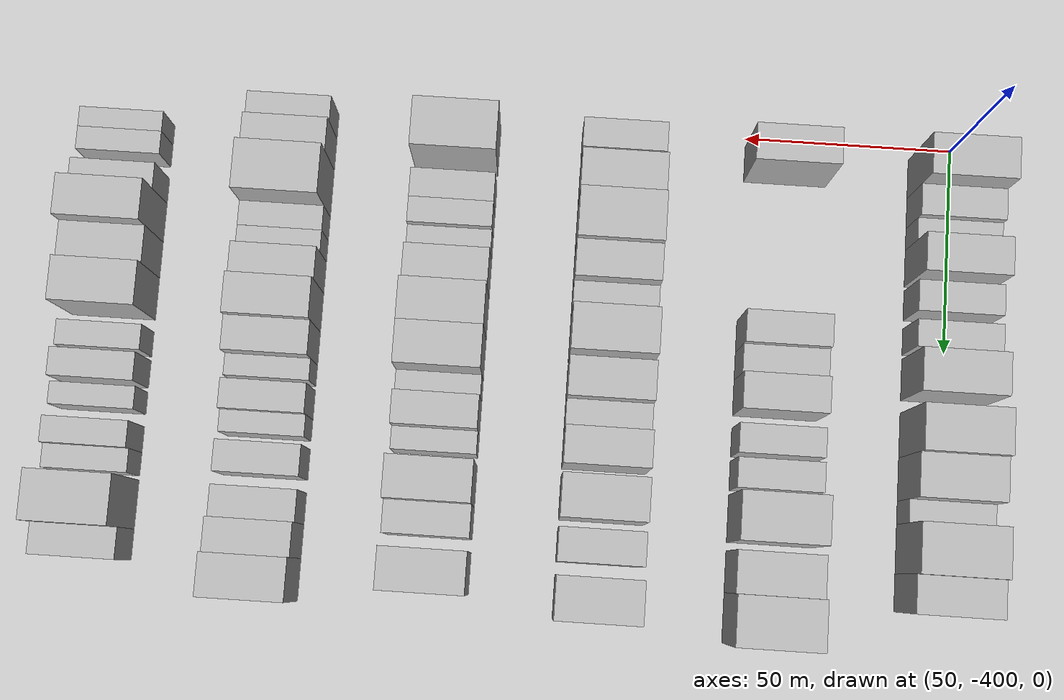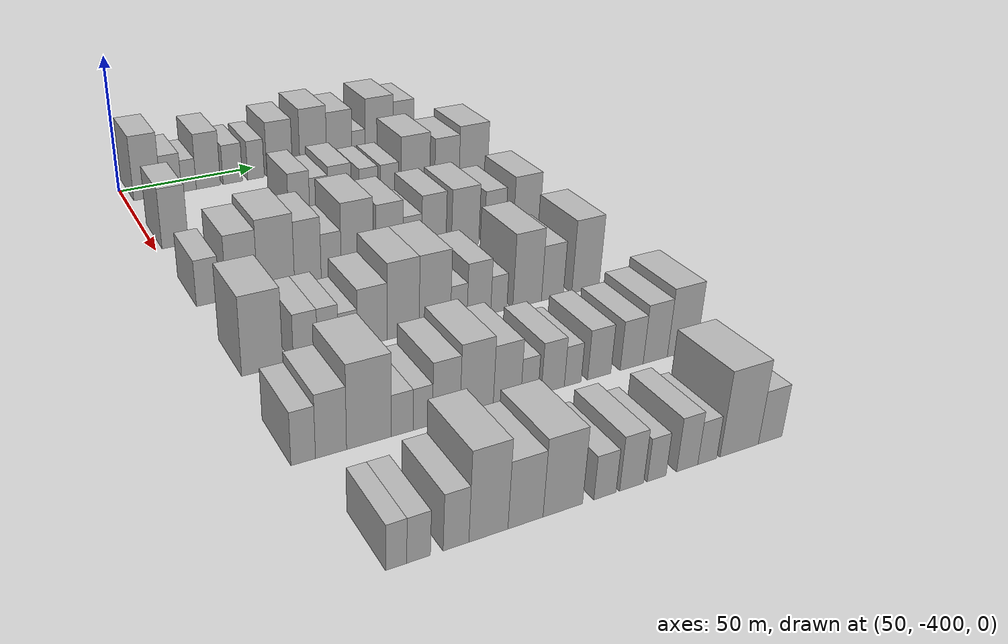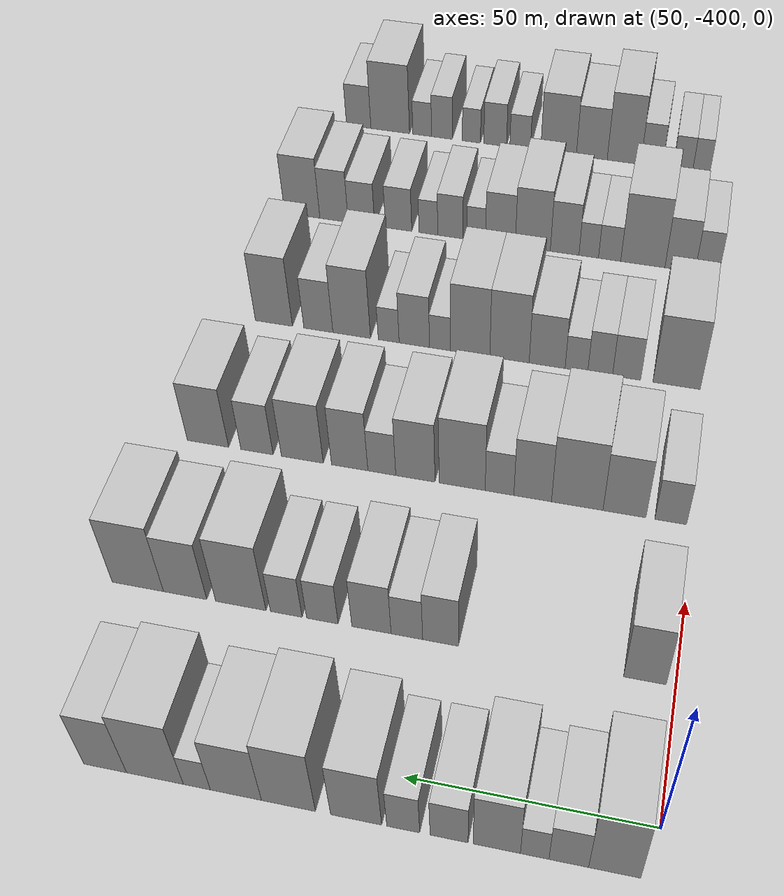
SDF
<sdf version="1.6">
 <world name="default">
  <model name="building_26">
   <static>1</static>
   <pose>50.0000 -392.3706 0 0.000000 0.000000 0.000000</pose>
   <link name="link">
    <pose>0 0 12.00 0 0 0</pose>
    <collision name="collision"><geometry><box><size>20.0000 9.7205 24.0000</size></box></geometry></collision>
    <visual name="visual">
     <cast_shadows>0</cast_shadows>
     <geometry><box><size>20.0000 9.7205 24.0000</size></box></geometry>
     <material>
      <script>
       <uri>model://HANNAS_wall/materials/scripts</uri>
       <uri>model://HANNAS_wall/materials/textures</uri>
       <name>vrc/HANNAS_wall</name>
      </script>
     </material>
    </visual>
   </link>
  </model>
  <model name="building_27">
   <static>1</static>
   <pose>50.0000 -383.7733 0 0.000000 0.000000 0.000000</pose>
   <link name="link">
    <pose>0 0 7.50 0 0 0</pose>
    <collision name="collision"><geometry><box><size>20.0000 7.4741 15.0000</size></box></geometry></collision>
    <visual name="visual">
     <cast_shadows>0</cast_shadows>
     <geometry><box><size>20.0000 7.4741 15.0000</size></box></geometry>
     <material>
      <script>
       <uri>model://HANNAS_wall/materials/scripts</uri>
       <uri>model://HANNAS_wall/materials/textures</uri>
       <name>vrc/HANNAS_wall</name>
      </script>
     </material>
    </visual>
   </link>
  </model>
  <model name="building_28">
   <static>1</static>
   <pose>50.0000 -377.3283 0 0.000000 0.000000 0.000000</pose>
   <link name="link">
    <pose>0 0 6.00 0 0 0</pose>
    <collision name="collision"><geometry><box><size>20.0000 5.4159 12.0000</size></box></geometry></collision>
    <visual name="visual">
     <cast_shadows>0</cast_shadows>
     <geometry><box><size>20.0000 5.4159 12.0000</size></box></geometry>
     <material>
      <script>
       <uri>model://HANNAS_wall/materials/scripts</uri>
       <uri>model://HANNAS_wall/materials/textures</uri>
       <name>vrc/HANNAS_wall</name>
      </script>
     </material>
    </visual>
   </link>
  </model>
  <model name="building_29">
   <static>1</static>
   <pose>50.0000 -370.1211 0 0.000000 0.000000 0.000000</pose>
   <link name="link">
    <pose>0 0 10.50 0 0 0</pose>
    <collision name="collision"><geometry><box><size>20.0000 8.9987 21.0000</size></box></geometry></collision>
    <visual name="visual">
     <cast_shadows>0</cast_shadows>
     <geometry><box><size>20.0000 8.9987 21.0000</size></box></geometry>
     <material>
      <script>
       <uri>model://HANNAS_wall/materials/scripts</uri>
       <uri>model://HANNAS_wall/materials/textures</uri>
       <name>vrc/HANNAS_wall</name>
      </script>
     </material>
    </visual>
   </link>
  </model>
  <model name="building_30">
   <static>1</static>
   <pose>50.0000 -360.9639 0 0.000000 0.000000 0.000000</pose>
   <link name="link">
    <pose>0 0 7.50 0 0 0</pose>
    <collision name="collision"><geometry><box><size>20.0000 7.3156 15.0000</size></box></geometry></collision>
    <visual name="visual">
     <cast_shadows>0</cast_shadows>
     <geometry><box><size>20.0000 7.3156 15.0000</size></box></geometry>
     <material>
      <script>
       <uri>model://HANNAS_wall/materials/scripts</uri>
       <uri>model://HANNAS_wall/materials/textures</uri>
       <name>vrc/HANNAS_wall</name>
      </script>
     </material>
    </visual>
   </link>
  </model>
  <model name="building_31">
   <static>1</static>
   <pose>50.0000 -352.1013 0 0.000000 0.000000 0.000000</pose>
   <link name="link">
    <pose>0 0 7.50 0 0 0</pose>
    <collision name="collision"><geometry><box><size>20.0000 6.4097 15.0000</size></box></geometry></collision>
    <visual name="visual">
     <cast_shadows>0</cast_shadows>
     <geometry><box><size>20.0000 6.4097 15.0000</size></box></geometry>
     <material>
      <script>
       <uri>model://HANNAS_wall/materials/scripts</uri>
       <uri>model://HANNAS_wall/materials/textures</uri>
       <name>vrc/HANNAS_wall</name>
      </script>
     </material>
    </visual>
   </link>
  </model>
  <model name="building_32">
   <static>1</static>
   <pose>50.0000 -342.8801 0 0.000000 0.000000 0.000000</pose>
   <link name="link">
    <pose>0 0 10.50 0 0 0</pose>
    <collision name="collision"><geometry><box><size>20.0000 10.0327 21.0000</size></box></geometry></collision>
    <visual name="visual">
     <cast_shadows>0</cast_shadows>
     <geometry><box><size>20.0000 10.0327 21.0000</size></box></geometry>
     <material>
      <script>
       <uri>model://HANNAS_wall/materials/scripts</uri>
       <uri>model://HANNAS_wall/materials/textures</uri>
       <name>vrc/HANNAS_wall</name>
      </script>
     </material>
    </visual>
   </link>
  </model>
  <model name="building_33">
   <static>1</static>
   <pose>50.0000 -329.4867 0 0.000000 0.000000 0.000000</pose>
   <link name="link">
    <pose>0 0 12.00 0 0 0</pose>
    <collision name="collision"><geometry><box><size>20.0000 10.7541 24.0000</size></box></geometry></collision>
    <visual name="visual">
     <cast_shadows>0</cast_shadows>
     <geometry><box><size>20.0000 10.7541 24.0000</size></box></geometry>
     <material>
      <script>
       <uri>model://HANNAS_wall/materials/scripts</uri>
       <uri>model://HANNAS_wall/materials/textures</uri>
       <name>vrc/HANNAS_wall</name>
      </script>
     </material>
    </visual>
   </link>
  </model>
  <model name="building_34">
   <static>1</static>
   <pose>50.0000 -318.9630 0 0.000000 0.000000 0.000000</pose>
   <link name="link">
    <pose>0 0 10.50 0 0 0</pose>
    <collision name="collision"><geometry><box><size>20.0000 10.2934 21.0000</size></box></geometry></collision>
    <visual name="visual">
     <cast_shadows>0</cast_shadows>
     <geometry><box><size>20.0000 10.2934 21.0000</size></box></geometry>
     <material>
      <script>
       <uri>model://HANNAS_wall/materials/scripts</uri>
       <uri>model://HANNAS_wall/materials/textures</uri>
       <name>vrc/HANNAS_wall</name>
      </script>
     </material>
    </visual>
   </link>
  </model>
  <model name="building_35">
   <static>1</static>
   <pose>50.0000 -311.0700 0 0.000000 0.000000 0.000000</pose>
   <link name="link">
    <pose>0 0 6.00 0 0 0</pose>
    <collision name="collision"><geometry><box><size>20.0000 5.4926 12.0000</size></box></geometry></collision>
    <visual name="visual">
     <cast_shadows>0</cast_shadows>
     <geometry><box><size>20.0000 5.4926 12.0000</size></box></geometry>
     <material>
      <script>
       <uri>model://HANNAS_wall/materials/scripts</uri>
       <uri>model://HANNAS_wall/materials/textures</uri>
       <name>vrc/HANNAS_wall</name>
      </script>
     </material>
    </visual>
   </link>
  </model>
  <model name="building_36">
   <static>1</static>
   <pose>50.0000 -302.5009 0 0.000000 0.000000 0.000000</pose>
   <link name="link">
    <pose>0 0 12.00 0 0 0</pose>
    <collision name="collision"><geometry><box><size>20.0000 11.6454 24.0000</size></box></geometry></collision>
    <visual name="visual">
     <cast_shadows>0</cast_shadows>
     <geometry><box><size>20.0000 11.6454 24.0000</size></box></geometry>
     <material>
      <script>
       <uri>model://HANNAS_wall/materials/scripts</uri>
       <uri>model://HANNAS_wall/materials/textures</uri>
       <name>vrc/HANNAS_wall</name>
      </script>
     </material>
    </visual>
   </link>
  </model>
  <model name="building_37">
   <static>1</static>
   <pose>50.0000 -292.2580 0 0.000000 0.000000 0.000000</pose>
   <link name="link">
    <pose>0 0 10.50 0 0 0</pose>
    <collision name="collision"><geometry><box><size>20.0000 8.8404 21.0000</size></box></geometry></collision>
    <visual name="visual">
     <cast_shadows>0</cast_shadows>
     <geometry><box><size>20.0000 8.8404 21.0000</size></box></geometry>
     <material>
      <script>
       <uri>model://HANNAS_wall/materials/scripts</uri>
       <uri>model://HANNAS_wall/materials/textures</uri>
       <name>vrc/HANNAS_wall</name>
      </script>
     </material>
    </visual>
   </link>
  </model>
  <model name="building_163">
   <static>1</static>
   <pose>90.0000 -393.5186 0 0.000000 0.000000 0.000000</pose>
   <link name="link">
    <pose>0 0 10.50 0 0 0</pose>
    <collision name="collision"><geometry><box><size>20.0000 8.7437 21.0000</size></box></geometry></collision>
    <visual name="visual">
     <cast_shadows>0</cast_shadows>
     <geometry><box><size>20.0000 8.7437 21.0000</size></box></geometry>
     <material>
      <script>
       <uri>model://HANNAS_wall/materials/scripts</uri>
       <uri>model://HANNAS_wall/materials/textures</uri>
       <name>vrc/HANNAS_wall</name>
      </script>
     </material>
    </visual>
   </link>
  </model>
  <model name="building_164">
   <static>1</static>
   <pose>90.0000 -350.7017 0 0.000000 0.000000 0.000000</pose>
   <link name="link">
    <pose>0 0 9.00 0 0 0</pose>
    <collision name="collision"><geometry><box><size>20.0000 7.6300 18.0000</size></box></geometry></collision>
    <visual name="visual">
     <cast_shadows>0</cast_shadows>
     <geometry><box><size>20.0000 7.6300 18.0000</size></box></geometry>
     <material>
      <script>
       <uri>model://HANNAS_wall/materials/scripts</uri>
       <uri>model://HANNAS_wall/materials/textures</uri>
       <name>vrc/HANNAS_wall</name>
      </script>
     </material>
    </visual>
   </link>
  </model>
  <model name="building_165">
   <static>1</static>
   <pose>90.0000 -343.4855 0 0.000000 0.000000 0.000000</pose>
   <link name="link">
    <pose>0 0 7.50 0 0 0</pose>
    <collision name="collision"><geometry><box><size>20.0000 6.8024 15.0000</size></box></geometry></collision>
    <visual name="visual">
     <cast_shadows>0</cast_shadows>
     <geometry><box><size>20.0000 6.8024 15.0000</size></box></geometry>
     <material>
      <script>
       <uri>model://HANNAS_wall/materials/scripts</uri>
       <uri>model://HANNAS_wall/materials/textures</uri>
       <name>vrc/HANNAS_wall</name>
      </script>
     </material>
    </visual>
   </link>
  </model>
  <model name="building_166">
   <static>1</static>
   <pose>90.0000 -335.8275 0 0.000000 0.000000 0.000000</pose>
   <link name="link">
    <pose>0 0 9.00 0 0 0</pose>
    <collision name="collision"><geometry><box><size>20.0000 8.5136 18.0000</size></box></geometry></collision>
    <visual name="visual">
     <cast_shadows>0</cast_shadows>
     <geometry><box><size>20.0000 8.5136 18.0000</size></box></geometry>
     <material>
      <script>
       <uri>model://HANNAS_wall/materials/scripts</uri>
       <uri>model://HANNAS_wall/materials/textures</uri>
       <name>vrc/HANNAS_wall</name>
      </script>
     </material>
    </visual>
   </link>
  </model>
  <model name="building_167">
   <static>1</static>
   <pose>90.0000 -325.1230 0 0.000000 0.000000 0.000000</pose>
   <link name="link">
    <pose>0 0 7.50 0 0 0</pose>
    <collision name="collision"><geometry><box><size>20.0000 6.8953 15.0000</size></box></geometry></collision>
    <visual name="visual">
     <cast_shadows>0</cast_shadows>
     <geometry><box><size>20.0000 6.8953 15.0000</size></box></geometry>
     <material>
      <script>
       <uri>model://HANNAS_wall/materials/scripts</uri>
       <uri>model://HANNAS_wall/materials/textures</uri>
       <name>vrc/HANNAS_wall</name>
      </script>
     </material>
    </visual>
   </link>
  </model>
  <model name="building_168">
   <static>1</static>
   <pose>90.0000 -317.1771 0 0.000000 0.000000 0.000000</pose>
   <link name="link">
    <pose>0 0 7.50 0 0 0</pose>
    <collision name="collision"><geometry><box><size>20.0000 6.9966 15.0000</size></box></geometry></collision>
    <visual name="visual">
     <cast_shadows>0</cast_shadows>
     <geometry><box><size>20.0000 6.9966 15.0000</size></box></geometry>
     <material>
      <script>
       <uri>model://HANNAS_wall/materials/scripts</uri>
       <uri>model://HANNAS_wall/materials/textures</uri>
       <name>vrc/HANNAS_wall</name>
      </script>
     </material>
    </visual>
   </link>
  </model>
  <model name="building_169">
   <static>1</static>
   <pose>90.0000 -307.0730 0 0.000000 0.000000 0.000000</pose>
   <link name="link">
    <pose>0 0 12.00 0 0 0</pose>
    <collision name="collision"><geometry><box><size>20.0000 11.2116 24.0000</size></box></geometry></collision>
    <visual name="visual">
     <cast_shadows>0</cast_shadows>
     <geometry><box><size>20.0000 11.2116 24.0000</size></box></geometry>
     <material>
      <script>
       <uri>model://HANNAS_wall/materials/scripts</uri>
       <uri>model://HANNAS_wall/materials/textures</uri>
       <name>vrc/HANNAS_wall</name>
      </script>
     </material>
    </visual>
   </link>
  </model>
  <model name="building_170">
   <static>1</static>
   <pose>90.0000 -294.5897 0 0.000000 0.000000 0.000000</pose>
   <link name="link">
    <pose>0 0 10.50 0 0 0</pose>
    <collision name="collision"><geometry><box><size>20.0000 9.7550 21.0000</size></box></geometry></collision>
    <visual name="visual">
     <cast_shadows>0</cast_shadows>
     <geometry><box><size>20.0000 9.7550 21.0000</size></box></geometry>
     <material>
      <script>
       <uri>model://HANNAS_wall/materials/scripts</uri>
       <uri>model://HANNAS_wall/materials/textures</uri>
       <name>vrc/HANNAS_wall</name>
      </script>
     </material>
    </visual>
   </link>
  </model>
  <model name="building_171">
   <static>1</static>
   <pose>90.0000 -283.8749 0 0.000000 0.000000 0.000000</pose>
   <link name="link">
    <pose>0 0 12.00 0 0 0</pose>
    <collision name="collision"><geometry><box><size>20.0000 11.6746 24.0000</size></box></geometry></collision>
    <visual name="visual">
     <cast_shadows>0</cast_shadows>
     <geometry><box><size>20.0000 11.6746 24.0000</size></box></geometry>
     <material>
      <script>
       <uri>model://HANNAS_wall/materials/scripts</uri>
       <uri>model://HANNAS_wall/materials/textures</uri>
       <name>vrc/HANNAS_wall</name>
      </script>
     </material>
    </visual>
   </link>
  </model>
  <model name="building_289">
   <static>1</static>
   <pose>130.0000 -394.8407 0 0.000000 0.000000 0.000000</pose>
   <link name="link">
    <pose>0 0 7.50 0 0 0</pose>
    <collision name="collision"><geometry><box><size>20.0000 7.1140 15.0000</size></box></geometry></collision>
    <visual name="visual">
     <cast_shadows>0</cast_shadows>
     <geometry><box><size>20.0000 7.1140 15.0000</size></box></geometry>
     <material>
      <script>
       <uri>model://HANNAS_wall/materials/scripts</uri>
       <uri>model://HANNAS_wall/materials/textures</uri>
       <name>vrc/HANNAS_wall</name>
      </script>
     </material>
    </visual>
   </link>
  </model>
  <model name="building_290">
   <static>1</static>
   <pose>130.0000 -384.4261 0 0.000000 0.000000 0.000000</pose>
   <link name="link">
    <pose>0 0 10.50 0 0 0</pose>
    <collision name="collision"><geometry><box><size>20.0000 9.7152 21.0000</size></box></geometry></collision>
    <visual name="visual">
     <cast_shadows>0</cast_shadows>
     <geometry><box><size>20.0000 9.7152 21.0000</size></box></geometry>
     <material>
      <script>
       <uri>model://HANNAS_wall/materials/scripts</uri>
       <uri>model://HANNAS_wall/materials/textures</uri>
       <name>vrc/HANNAS_wall</name>
      </script>
     </material>
    </visual>
   </link>
  </model>
  <model name="building_291">
   <static>1</static>
   <pose>130.0000 -373.6870 0 0.000000 0.000000 0.000000</pose>
   <link name="link">
    <pose>0 0 12.00 0 0 0</pose>
    <collision name="collision"><geometry><box><size>20.0000 11.7629 24.0000</size></box></geometry></collision>
    <visual name="visual">
     <cast_shadows>0</cast_shadows>
     <geometry><box><size>20.0000 11.7629 24.0000</size></box></geometry>
     <material>
      <script>
       <uri>model://HANNAS_wall/materials/scripts</uri>
       <uri>model://HANNAS_wall/materials/textures</uri>
       <name>vrc/HANNAS_wall</name>
      </script>
     </material>
    </visual>
   </link>
  </model>
  <model name="building_292">
   <static>1</static>
   <pose>130.0000 -363.4746 0 0.000000 0.000000 0.000000</pose>
   <link name="link">
    <pose>0 0 10.50 0 0 0</pose>
    <collision name="collision"><geometry><box><size>20.0000 8.6620 21.0000</size></box></geometry></collision>
    <visual name="visual">
     <cast_shadows>0</cast_shadows>
     <geometry><box><size>20.0000 8.6620 21.0000</size></box></geometry>
     <material>
      <script>
       <uri>model://HANNAS_wall/materials/scripts</uri>
       <uri>model://HANNAS_wall/materials/textures</uri>
       <name>vrc/HANNAS_wall</name>
      </script>
     </material>
    </visual>
   </link>
  </model>
  <model name="building_293">
   <static>1</static>
   <pose>130.0000 -355.8219 0 0.000000 0.000000 0.000000</pose>
   <link name="link">
    <pose>0 0 7.50 0 0 0</pose>
    <collision name="collision"><geometry><box><size>20.0000 6.6436 15.0000</size></box></geometry></collision>
    <visual name="visual">
     <cast_shadows>0</cast_shadows>
     <geometry><box><size>20.0000 6.6436 15.0000</size></box></geometry>
     <material>
      <script>
       <uri>model://HANNAS_wall/materials/scripts</uri>
       <uri>model://HANNAS_wall/materials/textures</uri>
       <name>vrc/HANNAS_wall</name>
      </script>
     </material>
    </visual>
   </link>
  </model>
  <model name="building_294">
   <static>1</static>
   <pose>130.0000 -347.1349 0 0.000000 0.000000 0.000000</pose>
   <link name="link">
    <pose>0 0 12.00 0 0 0</pose>
    <collision name="collision"><geometry><box><size>20.0000 10.7303 24.0000</size></box></geometry></collision>
    <visual name="visual">
     <cast_shadows>0</cast_shadows>
     <geometry><box><size>20.0000 10.7303 24.0000</size></box></geometry>
     <material>
      <script>
       <uri>model://HANNAS_wall/materials/scripts</uri>
       <uri>model://HANNAS_wall/materials/textures</uri>
       <name>vrc/HANNAS_wall</name>
      </script>
     </material>
    </visual>
   </link>
  </model>
  <model name="building_295">
   <static>1</static>
   <pose>130.0000 -336.1497 0 0.000000 0.000000 0.000000</pose>
   <link name="link">
    <pose>0 0 10.50 0 0 0</pose>
    <collision name="collision"><geometry><box><size>20.0000 9.2401 21.0000</size></box></geometry></collision>
    <visual name="visual">
     <cast_shadows>0</cast_shadows>
     <geometry><box><size>20.0000 9.2401 21.0000</size></box></geometry>
     <material>
      <script>
       <uri>model://HANNAS_wall/materials/scripts</uri>
       <uri>model://HANNAS_wall/materials/textures</uri>
       <name>vrc/HANNAS_wall</name>
      </script>
     </material>
    </visual>
   </link>
  </model>
  <model name="building_296">
   <static>1</static>
   <pose>130.0000 -328.2143 0 0.000000 0.000000 0.000000</pose>
   <link name="link">
    <pose>0 0 7.50 0 0 0</pose>
    <collision name="collision"><geometry><box><size>20.0000 6.6307 15.0000</size></box></geometry></collision>
    <visual name="visual">
     <cast_shadows>0</cast_shadows>
     <geometry><box><size>20.0000 6.6307 15.0000</size></box></geometry>
     <material>
      <script>
       <uri>model://HANNAS_wall/materials/scripts</uri>
       <uri>model://HANNAS_wall/materials/textures</uri>
       <name>vrc/HANNAS_wall</name>
      </script>
     </material>
    </visual>
   </link>
  </model>
  <model name="building_297">
   <static>1</static>
   <pose>130.0000 -320.5576 0 0.000000 0.000000 0.000000</pose>
   <link name="link">
    <pose>0 0 10.50 0 0 0</pose>
    <collision name="collision"><geometry><box><size>20.0000 8.6826 21.0000</size></box></geometry></collision>
    <visual name="visual">
     <cast_shadows>0</cast_shadows>
     <geometry><box><size>20.0000 8.6826 21.0000</size></box></geometry>
     <material>
      <script>
       <uri>model://HANNAS_wall/materials/scripts</uri>
       <uri>model://HANNAS_wall/materials/textures</uri>
       <name>vrc/HANNAS_wall</name>
      </script>
     </material>
    </visual>
   </link>
  </model>
  <model name="building_298">
   <static>1</static>
   <pose>130.0000 -309.1606 0 0.000000 0.000000 0.000000</pose>
   <link name="link">
    <pose>0 0 10.50 0 0 0</pose>
    <collision name="collision"><geometry><box><size>20.0000 10.1115 21.0000</size></box></geometry></collision>
    <visual name="visual">
     <cast_shadows>0</cast_shadows>
     <geometry><box><size>20.0000 10.1115 21.0000</size></box></geometry>
     <material>
      <script>
       <uri>model://HANNAS_wall/materials/scripts</uri>
       <uri>model://HANNAS_wall/materials/textures</uri>
       <name>vrc/HANNAS_wall</name>
      </script>
     </material>
    </visual>
   </link>
  </model>
  <model name="building_299">
   <static>1</static>
   <pose>130.0000 -298.1756 0 0.000000 0.000000 0.000000</pose>
   <link name="link">
    <pose>0 0 9.00 0 0 0</pose>
    <collision name="collision"><geometry><box><size>20.0000 7.8584 18.0000</size></box></geometry></collision>
    <visual name="visual">
     <cast_shadows>0</cast_shadows>
     <geometry><box><size>20.0000 7.8584 18.0000</size></box></geometry>
     <material>
      <script>
       <uri>model://HANNAS_wall/materials/scripts</uri>
       <uri>model://HANNAS_wall/materials/textures</uri>
       <name>vrc/HANNAS_wall</name>
      </script>
     </material>
    </visual>
   </link>
  </model>
  <model name="building_300">
   <static>1</static>
   <pose>130.0000 -286.1653 0 0.000000 0.000000 0.000000</pose>
   <link name="link">
    <pose>0 0 10.50 0 0 0</pose>
    <collision name="collision"><geometry><box><size>20.0000 10.1621 21.0000</size></box></geometry></collision>
    <visual name="visual">
     <cast_shadows>0</cast_shadows>
     <geometry><box><size>20.0000 10.1621 21.0000</size></box></geometry>
     <material>
      <script>
       <uri>model://HANNAS_wall/materials/scripts</uri>
       <uri>model://HANNAS_wall/materials/textures</uri>
       <name>vrc/HANNAS_wall</name>
      </script>
     </material>
    </visual>
   </link>
  </model>
  <model name="building_428">
   <static>1</static>
   <pose>170.0000 -392.2995 0 0.000000 0.000000 0.000000</pose>
   <link name="link">
    <pose>0 0 12.00 0 0 0</pose>
    <collision name="collision"><geometry><box><size>20.0000 11.5231 24.0000</size></box></geometry></collision>
    <visual name="visual">
     <cast_shadows>0</cast_shadows>
     <geometry><box><size>20.0000 11.5231 24.0000</size></box></geometry>
     <material>
      <script>
       <uri>model://HANNAS_wall/materials/scripts</uri>
       <uri>model://HANNAS_wall/materials/textures</uri>
       <name>vrc/HANNAS_wall</name>
      </script>
     </material>
    </visual>
   </link>
  </model>
  <model name="building_429">
   <static>1</static>
   <pose>170.0000 -380.0677 0 0.000000 0.000000 0.000000</pose>
   <link name="link">
    <pose>0 0 7.50 0 0 0</pose>
    <collision name="collision"><geometry><box><size>20.0000 6.9404 15.0000</size></box></geometry></collision>
    <visual name="visual">
     <cast_shadows>0</cast_shadows>
     <geometry><box><size>20.0000 6.9404 15.0000</size></box></geometry>
     <material>
      <script>
       <uri>model://HANNAS_wall/materials/scripts</uri>
       <uri>model://HANNAS_wall/materials/textures</uri>
       <name>vrc/HANNAS_wall</name>
      </script>
     </material>
    </visual>
   </link>
  </model>
  <model name="building_430">
   <static>1</static>
   <pose>170.0000 -373.5445 0 0.000000 0.000000 0.000000</pose>
   <link name="link">
    <pose>0 0 7.50 0 0 0</pose>
    <collision name="collision"><geometry><box><size>20.0000 6.1060 15.0000</size></box></geometry></collision>
    <visual name="visual">
     <cast_shadows>0</cast_shadows>
     <geometry><box><size>20.0000 6.1060 15.0000</size></box></geometry>
     <material>
      <script>
       <uri>model://HANNAS_wall/materials/scripts</uri>
       <uri>model://HANNAS_wall/materials/textures</uri>
       <name>vrc/HANNAS_wall</name>
      </script>
     </material>
    </visual>
   </link>
  </model>
  <model name="building_431">
   <static>1</static>
   <pose>170.0000 -367.6738 0 0.000000 0.000000 0.000000</pose>
   <link name="link">
    <pose>0 0 6.00 0 0 0</pose>
    <collision name="collision"><geometry><box><size>20.0000 5.6353 12.0000</size></box></geometry></collision>
    <visual name="visual">
     <cast_shadows>0</cast_shadows>
     <geometry><box><size>20.0000 5.6353 12.0000</size></box></geometry>
     <material>
      <script>
       <uri>model://HANNAS_wall/materials/scripts</uri>
       <uri>model://HANNAS_wall/materials/textures</uri>
       <name>vrc/HANNAS_wall</name>
      </script>
     </material>
    </visual>
   </link>
  </model>
  <model name="building_432">
   <static>1</static>
   <pose>170.0000 -360.3638 0 0.000000 0.000000 0.000000</pose>
   <link name="link">
    <pose>0 0 9.00 0 0 0</pose>
    <collision name="collision"><geometry><box><size>20.0000 8.9847 18.0000</size></box></geometry></collision>
    <visual name="visual">
     <cast_shadows>0</cast_shadows>
     <geometry><box><size>20.0000 8.9847 18.0000</size></box></geometry>
     <material>
      <script>
       <uri>model://HANNAS_wall/materials/scripts</uri>
       <uri>model://HANNAS_wall/materials/textures</uri>
       <name>vrc/HANNAS_wall</name>
      </script>
     </material>
    </visual>
   </link>
  </model>
  <model name="building_433">
   <static>1</static>
   <pose>170.0000 -350.9196 0 0.000000 0.000000 0.000000</pose>
   <link name="link">
    <pose>0 0 12.00 0 0 0</pose>
    <collision name="collision"><geometry><box><size>20.0000 9.9036 24.0000</size></box></geometry></collision>
    <visual name="visual">
     <cast_shadows>0</cast_shadows>
     <geometry><box><size>20.0000 9.9036 24.0000</size></box></geometry>
     <material>
      <script>
       <uri>model://HANNAS_wall/materials/scripts</uri>
       <uri>model://HANNAS_wall/materials/textures</uri>
       <name>vrc/HANNAS_wall</name>
      </script>
     </material>
    </visual>
   </link>
  </model>
  <model name="building_434">
   <static>1</static>
   <pose>170.0000 -340.9814 0 0.000000 0.000000 0.000000</pose>
   <link name="link">
    <pose>0 0 12.00 0 0 0</pose>
    <collision name="collision"><geometry><box><size>20.0000 9.9729 24.0000</size></box></geometry></collision>
    <visual name="visual">
     <cast_shadows>0</cast_shadows>
     <geometry><box><size>20.0000 9.9729 24.0000</size></box></geometry>
     <material>
      <script>
       <uri>model://HANNAS_wall/materials/scripts</uri>
       <uri>model://HANNAS_wall/materials/textures</uri>
       <name>vrc/HANNAS_wall</name>
      </script>
     </material>
    </visual>
   </link>
  </model>
  <model name="building_435">
   <static>1</static>
   <pose>170.0000 -333.3214 0 0.000000 0.000000 0.000000</pose>
   <link name="link">
    <pose>0 0 6.00 0 0 0</pose>
    <collision name="collision"><geometry><box><size>20.0000 5.3470 12.0000</size></box></geometry></collision>
    <visual name="visual">
     <cast_shadows>0</cast_shadows>
     <geometry><box><size>20.0000 5.3470 12.0000</size></box></geometry>
     <material>
      <script>
       <uri>model://HANNAS_wall/materials/scripts</uri>
       <uri>model://HANNAS_wall/materials/textures</uri>
       <name>vrc/HANNAS_wall</name>
      </script>
     </material>
    </visual>
   </link>
  </model>
  <model name="building_436">
   <static>1</static>
   <pose>170.0000 -326.7410 0 0.000000 0.000000 0.000000</pose>
   <link name="link">
    <pose>0 0 9.00 0 0 0</pose>
    <collision name="collision"><geometry><box><size>20.0000 7.8137 18.0000</size></box></geometry></collision>
    <visual name="visual">
     <cast_shadows>0</cast_shadows>
     <geometry><box><size>20.0000 7.8137 18.0000</size></box></geometry>
     <material>
      <script>
       <uri>model://HANNAS_wall/materials/scripts</uri>
       <uri>model://HANNAS_wall/materials/textures</uri>
       <name>vrc/HANNAS_wall</name>
      </script>
     </material>
    </visual>
   </link>
  </model>
  <model name="building_437">
   <static>1</static>
   <pose>170.0000 -320.1382 0 0.000000 0.000000 0.000000</pose>
   <link name="link">
    <pose>0 0 6.00 0 0 0</pose>
    <collision name="collision"><geometry><box><size>20.0000 5.3919 12.0000</size></box></geometry></collision>
    <visual name="visual">
     <cast_shadows>0</cast_shadows>
     <geometry><box><size>20.0000 5.3919 12.0000</size></box></geometry>
     <material>
      <script>
       <uri>model://HANNAS_wall/materials/scripts</uri>
       <uri>model://HANNAS_wall/materials/textures</uri>
       <name>vrc/HANNAS_wall</name>
      </script>
     </material>
    </visual>
   </link>
  </model>
  <model name="building_438">
   <static>1</static>
   <pose>170.0000 -310.5460 0 0.000000 0.000000 0.000000</pose>
   <link name="link">
    <pose>0 0 12.00 0 0 0</pose>
    <collision name="collision"><geometry><box><size>20.0000 9.7925 24.0000</size></box></geometry></collision>
    <visual name="visual">
     <cast_shadows>0</cast_shadows>
     <geometry><box><size>20.0000 9.7925 24.0000</size></box></geometry>
     <material>
      <script>
       <uri>model://HANNAS_wall/materials/scripts</uri>
       <uri>model://HANNAS_wall/materials/textures</uri>
       <name>vrc/HANNAS_wall</name>
      </script>
     </material>
    </visual>
   </link>
  </model>
  <model name="building_439">
   <static>1</static>
   <pose>170.0000 -301.8427 0 0.000000 0.000000 0.000000</pose>
   <link name="link">
    <pose>0 0 9.00 0 0 0</pose>
    <collision name="collision"><geometry><box><size>20.0000 7.6141 18.0000</size></box></geometry></collision>
    <visual name="visual">
     <cast_shadows>0</cast_shadows>
     <geometry><box><size>20.0000 7.6141 18.0000</size></box></geometry>
     <material>
      <script>
       <uri>model://HANNAS_wall/materials/scripts</uri>
       <uri>model://HANNAS_wall/materials/textures</uri>
       <name>vrc/HANNAS_wall</name>
      </script>
     </material>
    </visual>
   </link>
  </model>
  <model name="building_440">
   <static>1</static>
   <pose>170.0000 -290.1424 0 0.000000 0.000000 0.000000</pose>
   <link name="link">
    <pose>0 0 12.00 0 0 0</pose>
    <collision name="collision"><geometry><box><size>20.0000 9.7864 24.0000</size></box></geometry></collision>
    <visual name="visual">
     <cast_shadows>0</cast_shadows>
     <geometry><box><size>20.0000 9.7864 24.0000</size></box></geometry>
     <material>
      <script>
       <uri>model://HANNAS_wall/materials/scripts</uri>
       <uri>model://HANNAS_wall/materials/textures</uri>
       <name>vrc/HANNAS_wall</name>
      </script>
     </material>
    </visual>
   </link>
  </model>
  <model name="building_569">
   <static>1</static>
   <pose>210.0000 -396.4364 0 0.000000 0.000000 0.000000</pose>
   <link name="link">
    <pose>0 0 7.50 0 0 0</pose>
    <collision name="collision"><geometry><box><size>20.0000 6.1623 15.0000</size></box></geometry></collision>
    <visual name="visual">
     <cast_shadows>0</cast_shadows>
     <geometry><box><size>20.0000 6.1623 15.0000</size></box></geometry>
     <material>
      <script>
       <uri>model://HANNAS_wall/materials/scripts</uri>
       <uri>model://HANNAS_wall/materials/textures</uri>
       <name>vrc/HANNAS_wall</name>
      </script>
     </material>
    </visual>
   </link>
  </model>
  <model name="building_570">
   <static>1</static>
   <pose>210.0000 -389.3779 0 0.000000 0.000000 0.000000</pose>
   <link name="link">
    <pose>0 0 9.00 0 0 0</pose>
    <collision name="collision"><geometry><box><size>20.0000 7.9547 18.0000</size></box></geometry></collision>
    <visual name="visual">
     <cast_shadows>0</cast_shadows>
     <geometry><box><size>20.0000 7.9547 18.0000</size></box></geometry>
     <material>
      <script>
       <uri>model://HANNAS_wall/materials/scripts</uri>
       <uri>model://HANNAS_wall/materials/textures</uri>
       <name>vrc/HANNAS_wall</name>
      </script>
     </material>
    </visual>
   </link>
  </model>
  <model name="building_571">
   <static>1</static>
   <pose>210.0000 -379.5376 0 0.000000 0.000000 0.000000</pose>
   <link name="link">
    <pose>0 0 12.00 0 0 0</pose>
    <collision name="collision"><geometry><box><size>20.0000 11.7258 24.0000</size></box></geometry></collision>
    <visual name="visual">
     <cast_shadows>0</cast_shadows>
     <geometry><box><size>20.0000 11.7258 24.0000</size></box></geometry>
     <material>
      <script>
       <uri>model://HANNAS_wall/materials/scripts</uri>
       <uri>model://HANNAS_wall/materials/textures</uri>
       <name>vrc/HANNAS_wall</name>
      </script>
     </material>
    </visual>
   </link>
  </model>
  <model name="building_572">
   <static>1</static>
   <pose>210.0000 -370.7108 0 0.000000 0.000000 0.000000</pose>
   <link name="link">
    <pose>0 0 6.00 0 0 0</pose>
    <collision name="collision"><geometry><box><size>20.0000 5.9278 12.0000</size></box></geometry></collision>
    <visual name="visual">
     <cast_shadows>0</cast_shadows>
     <geometry><box><size>20.0000 5.9278 12.0000</size></box></geometry>
     <material>
      <script>
       <uri>model://HANNAS_wall/materials/scripts</uri>
       <uri>model://HANNAS_wall/materials/textures</uri>
       <name>vrc/HANNAS_wall</name>
      </script>
     </material>
    </visual>
   </link>
  </model>
  <model name="building_573">
   <static>1</static>
   <pose>210.0000 -365.1269 0 0.000000 0.000000 0.000000</pose>
   <link name="link">
    <pose>0 0 6.00 0 0 0</pose>
    <collision name="collision"><geometry><box><size>20.0000 5.2398 12.0000</size></box></geometry></collision>
    <visual name="visual">
     <cast_shadows>0</cast_shadows>
     <geometry><box><size>20.0000 5.2398 12.0000</size></box></geometry>
     <material>
      <script>
       <uri>model://HANNAS_wall/materials/scripts</uri>
       <uri>model://HANNAS_wall/materials/textures</uri>
       <name>vrc/HANNAS_wall</name>
      </script>
     </material>
    </visual>
   </link>
  </model>
  <model name="building_574">
   <static>1</static>
   <pose>210.0000 -358.6496 0 0.000000 0.000000 0.000000</pose>
   <link name="link">
    <pose>0 0 9.00 0 0 0</pose>
    <collision name="collision"><geometry><box><size>20.0000 7.7149 18.0000</size></box></geometry></collision>
    <visual name="visual">
     <cast_shadows>0</cast_shadows>
     <geometry><box><size>20.0000 7.7149 18.0000</size></box></geometry>
     <material>
      <script>
       <uri>model://HANNAS_wall/materials/scripts</uri>
       <uri>model://HANNAS_wall/materials/textures</uri>
       <name>vrc/HANNAS_wall</name>
      </script>
     </material>
    </visual>
   </link>
  </model>
  <model name="building_575">
   <static>1</static>
   <pose>210.0000 -350.0360 0 0.000000 0.000000 0.000000</pose>
   <link name="link">
    <pose>0 0 10.50 0 0 0</pose>
    <collision name="collision"><geometry><box><size>20.0000 9.5121 21.0000</size></box></geometry></collision>
    <visual name="visual">
     <cast_shadows>0</cast_shadows>
     <geometry><box><size>20.0000 9.5121 21.0000</size></box></geometry>
     <material>
      <script>
       <uri>model://HANNAS_wall/materials/scripts</uri>
       <uri>model://HANNAS_wall/materials/textures</uri>
       <name>vrc/HANNAS_wall</name>
      </script>
     </material>
    </visual>
   </link>
  </model>
  <model name="building_576">
   <static>1</static>
   <pose>210.0000 -341.2322 0 0.000000 0.000000 0.000000</pose>
   <link name="link">
    <pose>0 0 9.00 0 0 0</pose>
    <collision name="collision"><geometry><box><size>20.0000 8.0955 18.0000</size></box></geometry></collision>
    <visual name="visual">
     <cast_shadows>0</cast_shadows>
     <geometry><box><size>20.0000 8.0955 18.0000</size></box></geometry>
     <material>
      <script>
       <uri>model://HANNAS_wall/materials/scripts</uri>
       <uri>model://HANNAS_wall/materials/textures</uri>
       <name>vrc/HANNAS_wall</name>
      </script>
     </material>
    </visual>
   </link>
  </model>
  <model name="building_577">
   <static>1</static>
   <pose>210.0000 -334.6101 0 0.000000 0.000000 0.000000</pose>
   <link name="link">
    <pose>0 0 6.00 0 0 0</pose>
    <collision name="collision"><geometry><box><size>20.0000 5.1487 12.0000</size></box></geometry></collision>
    <visual name="visual">
     <cast_shadows>0</cast_shadows>
     <geometry><box><size>20.0000 5.1487 12.0000</size></box></geometry>
     <material>
      <script>
       <uri>model://HANNAS_wall/materials/scripts</uri>
       <uri>model://HANNAS_wall/materials/textures</uri>
       <name>vrc/HANNAS_wall</name>
      </script>
     </material>
    </visual>
   </link>
  </model>
  <model name="building_578">
   <static>1</static>
   <pose>210.0000 -327.5419 0 0.000000 0.000000 0.000000</pose>
   <link name="link">
    <pose>0 0 7.50 0 0 0</pose>
    <collision name="collision"><geometry><box><size>20.0000 6.9877 15.0000</size></box></geometry></collision>
    <visual name="visual">
     <cast_shadows>0</cast_shadows>
     <geometry><box><size>20.0000 6.9877 15.0000</size></box></geometry>
     <material>
      <script>
       <uri>model://HANNAS_wall/materials/scripts</uri>
       <uri>model://HANNAS_wall/materials/textures</uri>
       <name>vrc/HANNAS_wall</name>
      </script>
     </material>
    </visual>
   </link>
  </model>
  <model name="building_579">
   <static>1</static>
   <pose>210.0000 -321.4546 0 0.000000 0.000000 0.000000</pose>
   <link name="link">
    <pose>0 0 6.00 0 0 0</pose>
    <collision name="collision"><geometry><box><size>20.0000 5.1868 12.0000</size></box></geometry></collision>
    <visual name="visual">
     <cast_shadows>0</cast_shadows>
     <geometry><box><size>20.0000 5.1868 12.0000</size></box></geometry>
     <material>
      <script>
       <uri>model://HANNAS_wall/materials/scripts</uri>
       <uri>model://HANNAS_wall/materials/textures</uri>
       <name>vrc/HANNAS_wall</name>
      </script>
     </material>
    </visual>
   </link>
  </model>
  <model name="building_580">
   <static>1</static>
   <pose>210.0000 -313.1856 0 0.000000 0.000000 0.000000</pose>
   <link name="link">
    <pose>0 0 7.50 0 0 0</pose>
    <collision name="collision"><geometry><box><size>20.0000 7.3511 15.0000</size></box></geometry></collision>
    <visual name="visual">
     <cast_shadows>0</cast_shadows>
     <geometry><box><size>20.0000 7.3511 15.0000</size></box></geometry>
     <material>
      <script>
       <uri>model://HANNAS_wall/materials/scripts</uri>
       <uri>model://HANNAS_wall/materials/textures</uri>
       <name>vrc/HANNAS_wall</name>
      </script>
     </material>
    </visual>
   </link>
  </model>
  <model name="building_581">
   <static>1</static>
   <pose>210.0000 -302.7931 0 0.000000 0.000000 0.000000</pose>
   <link name="link">
    <pose>0 0 7.50 0 0 0</pose>
    <collision name="collision"><geometry><box><size>20.0000 7.4340 15.0000</size></box></geometry></collision>
    <visual name="visual">
     <cast_shadows>0</cast_shadows>
     <geometry><box><size>20.0000 7.4340 15.0000</size></box></geometry>
     <material>
      <script>
       <uri>model://HANNAS_wall/materials/scripts</uri>
       <uri>model://HANNAS_wall/materials/textures</uri>
       <name>vrc/HANNAS_wall</name>
      </script>
     </material>
    </visual>
   </link>
  </model>
  <model name="building_582">
   <static>1</static>
   <pose>210.0000 -295.0786 0 0.000000 0.000000 0.000000</pose>
   <link name="link">
    <pose>0 0 9.00 0 0 0</pose>
    <collision name="collision"><geometry><box><size>20.0000 7.9950 18.0000</size></box></geometry></collision>
    <visual name="visual">
     <cast_shadows>0</cast_shadows>
     <geometry><box><size>20.0000 7.9950 18.0000</size></box></geometry>
     <material>
      <script>
       <uri>model://HANNAS_wall/materials/scripts</uri>
       <uri>model://HANNAS_wall/materials/textures</uri>
       <name>vrc/HANNAS_wall</name>
      </script>
     </material>
    </visual>
   </link>
  </model>
  <model name="building_583">
   <static>1</static>
   <pose>210.0000 -286.0801 0 0.000000 0.000000 0.000000</pose>
   <link name="link">
    <pose>0 0 10.50 0 0 0</pose>
    <collision name="collision"><geometry><box><size>20.0000 10.0021 21.0000</size></box></geometry></collision>
    <visual name="visual">
     <cast_shadows>0</cast_shadows>
     <geometry><box><size>20.0000 10.0021 21.0000</size></box></geometry>
     <material>
      <script>
       <uri>model://HANNAS_wall/materials/scripts</uri>
       <uri>model://HANNAS_wall/materials/textures</uri>
       <name>vrc/HANNAS_wall</name>
      </script>
     </material>
    </visual>
   </link>
  </model>
  <model name="building_699">
   <static>1</static>
   <pose>250.0000 -391.5942 0 0.000000 0.000000 0.000000</pose>
   <link name="link">
    <pose>0 0 6.00 0 0 0</pose>
    <collision name="collision"><geometry><box><size>20.0000 4.8402 12.0000</size></box></geometry></collision>
    <visual name="visual">
     <cast_shadows>0</cast_shadows>
     <geometry><box><size>20.0000 4.8402 12.0000</size></box></geometry>
     <material>
      <script>
       <uri>model://HANNAS_wall/materials/scripts</uri>
       <uri>model://HANNAS_wall/materials/textures</uri>
       <name>vrc/HANNAS_wall</name>
      </script>
     </material>
    </visual>
   </link>
  </model>
  <model name="building_700">
   <static>1</static>
   <pose>250.0000 -386.4090 0 0.000000 0.000000 0.000000</pose>
   <link name="link">
    <pose>0 0 6.00 0 0 0</pose>
    <collision name="collision"><geometry><box><size>20.0000 5.5302 12.0000</size></box></geometry></collision>
    <visual name="visual">
     <cast_shadows>0</cast_shadows>
     <geometry><box><size>20.0000 5.5302 12.0000</size></box></geometry>
     <material>
      <script>
       <uri>model://HANNAS_wall/materials/scripts</uri>
       <uri>model://HANNAS_wall/materials/textures</uri>
       <name>vrc/HANNAS_wall</name>
      </script>
     </material>
    </visual>
   </link>
  </model>
  <model name="building_701">
   <static>1</static>
   <pose>250.0000 -377.5511 0 0.000000 0.000000 0.000000</pose>
   <link name="link">
    <pose>0 0 7.50 0 0 0</pose>
    <collision name="collision"><geometry><box><size>20.0000 6.1856 15.0000</size></box></geometry></collision>
    <visual name="visual">
     <cast_shadows>0</cast_shadows>
     <geometry><box><size>20.0000 6.1856 15.0000</size></box></geometry>
     <material>
      <script>
       <uri>model://HANNAS_wall/materials/scripts</uri>
       <uri>model://HANNAS_wall/materials/textures</uri>
       <name>vrc/HANNAS_wall</name>
      </script>
     </material>
    </visual>
   </link>
  </model>
  <model name="building_702">
   <static>1</static>
   <pose>250.0000 -369.6534 0 0.000000 0.000000 0.000000</pose>
   <link name="link">
    <pose>0 0 12.00 0 0 0</pose>
    <collision name="collision"><geometry><box><size>20.0000 9.6098 24.0000</size></box></geometry></collision>
    <visual name="visual">
     <cast_shadows>0</cast_shadows>
     <geometry><box><size>20.0000 9.6098 24.0000</size></box></geometry>
     <material>
      <script>
       <uri>model://HANNAS_wall/materials/scripts</uri>
       <uri>model://HANNAS_wall/materials/textures</uri>
       <name>vrc/HANNAS_wall</name>
      </script>
     </material>
    </visual>
   </link>
  </model>
  <model name="building_703">
   <static>1</static>
   <pose>250.0000 -360.4025 0 0.000000 0.000000 0.000000</pose>
   <link name="link">
    <pose>0 0 9.00 0 0 0</pose>
    <collision name="collision"><geometry><box><size>20.0000 8.8920 18.0000</size></box></geometry></collision>
    <visual name="visual">
     <cast_shadows>0</cast_shadows>
     <geometry><box><size>20.0000 8.8920 18.0000</size></box></geometry>
     <material>
      <script>
       <uri>model://HANNAS_wall/materials/scripts</uri>
       <uri>model://HANNAS_wall/materials/textures</uri>
       <name>vrc/HANNAS_wall</name>
      </script>
     </material>
    </visual>
   </link>
  </model>
  <model name="building_704">
   <static>1</static>
   <pose>250.0000 -350.7896 0 0.000000 0.000000 0.000000</pose>
   <link name="link">
    <pose>0 0 10.50 0 0 0</pose>
    <collision name="collision"><geometry><box><size>20.0000 10.3337 21.0000</size></box></geometry></collision>
    <visual name="visual">
     <cast_shadows>0</cast_shadows>
     <geometry><box><size>20.0000 10.3337 21.0000</size></box></geometry>
     <material>
      <script>
       <uri>model://HANNAS_wall/materials/scripts</uri>
       <uri>model://HANNAS_wall/materials/textures</uri>
       <name>vrc/HANNAS_wall</name>
      </script>
     </material>
    </visual>
   </link>
  </model>
  <model name="building_705">
   <static>1</static>
   <pose>250.0000 -339.6278 0 0.000000 0.000000 0.000000</pose>
   <link name="link">
    <pose>0 0 6.00 0 0 0</pose>
    <collision name="collision"><geometry><box><size>20.0000 5.9899 12.0000</size></box></geometry></collision>
    <visual name="visual">
     <cast_shadows>0</cast_shadows>
     <geometry><box><size>20.0000 5.9899 12.0000</size></box></geometry>
     <material>
      <script>
       <uri>model://HANNAS_wall/materials/scripts</uri>
       <uri>model://HANNAS_wall/materials/textures</uri>
       <name>vrc/HANNAS_wall</name>
      </script>
     </material>
    </visual>
   </link>
  </model>
  <model name="building_706">
   <static>1</static>
   <pose>250.0000 -332.3166 0 0.000000 0.000000 0.000000</pose>
   <link name="link">
    <pose>0 0 7.50 0 0 0</pose>
    <collision name="collision"><geometry><box><size>20.0000 6.6325 15.0000</size></box></geometry></collision>
    <visual name="visual">
     <cast_shadows>0</cast_shadows>
     <geometry><box><size>20.0000 6.6325 15.0000</size></box></geometry>
     <material>
      <script>
       <uri>model://HANNAS_wall/materials/scripts</uri>
       <uri>model://HANNAS_wall/materials/textures</uri>
       <name>vrc/HANNAS_wall</name>
      </script>
     </material>
    </visual>
   </link>
  </model>
  <model name="building_707">
   <static>1</static>
   <pose>250.0000 -325.3452 0 0.000000 0.000000 0.000000</pose>
   <link name="link">
    <pose>0 0 6.00 0 0 0</pose>
    <collision name="collision"><geometry><box><size>20.0000 5.3103 12.0000</size></box></geometry></collision>
    <visual name="visual">
     <cast_shadows>0</cast_shadows>
     <geometry><box><size>20.0000 5.3103 12.0000</size></box></geometry>
     <material>
      <script>
       <uri>model://HANNAS_wall/materials/scripts</uri>
       <uri>model://HANNAS_wall/materials/textures</uri>
       <name>vrc/HANNAS_wall</name>
      </script>
     </material>
    </visual>
   </link>
  </model>
  <model name="building_708">
   <static>1</static>
   <pose>250.0000 -316.6151 0 0.000000 0.000000 0.000000</pose>
   <link name="link">
    <pose>0 0 7.50 0 0 0</pose>
    <collision name="collision"><geometry><box><size>20.0000 6.1499 15.0000</size></box></geometry></collision>
    <visual name="visual">
     <cast_shadows>0</cast_shadows>
     <geometry><box><size>20.0000 6.1499 15.0000</size></box></geometry>
     <material>
      <script>
       <uri>model://HANNAS_wall/materials/scripts</uri>
       <uri>model://HANNAS_wall/materials/textures</uri>
       <name>vrc/HANNAS_wall</name>
      </script>
     </material>
    </visual>
   </link>
  </model>
  <model name="building_709">
   <static>1</static>
   <pose>250.0000 -310.7490 0 0.000000 0.000000 0.000000</pose>
   <link name="link">
    <pose>0 0 6.00 0 0 0</pose>
    <collision name="collision"><geometry><box><size>20.0000 5.5823 12.0000</size></box></geometry></collision>
    <visual name="visual">
     <cast_shadows>0</cast_shadows>
     <geometry><box><size>20.0000 5.5823 12.0000</size></box></geometry>
     <material>
      <script>
       <uri>model://HANNAS_wall/materials/scripts</uri>
       <uri>model://HANNAS_wall/materials/textures</uri>
       <name>vrc/HANNAS_wall</name>
      </script>
     </material>
    </visual>
   </link>
  </model>
  <model name="building_710">
   <static>1</static>
   <pose>250.0000 -301.1611 0 0.000000 0.000000 0.000000</pose>
   <link name="link">
    <pose>0 0 12.00 0 0 0</pose>
    <collision name="collision"><geometry><box><size>20.0000 11.5936 24.0000</size></box></geometry></collision>
    <visual name="visual">
     <cast_shadows>0</cast_shadows>
     <geometry><box><size>20.0000 11.5936 24.0000</size></box></geometry>
     <material>
      <script>
       <uri>model://HANNAS_wall/materials/scripts</uri>
       <uri>model://HANNAS_wall/materials/textures</uri>
       <name>vrc/HANNAS_wall</name>
      </script>
     </material>
    </visual>
   </link>
  </model>
  <model name="building_711">
   <static>1</static>
   <pose>250.0000 -291.6864 0 0.000000 0.000000 0.000000</pose>
   <link name="link">
    <pose>0 0 7.50 0 0 0</pose>
    <collision name="collision"><geometry><box><size>20.0000 7.3557 15.0000</size></box></geometry></collision>
    <visual name="visual">
     <cast_shadows>0</cast_shadows>
     <geometry><box><size>20.0000 7.3557 15.0000</size></box></geometry>
     <material>
      <script>
       <uri>model://HANNAS_wall/materials/scripts</uri>
       <uri>model://HANNAS_wall/materials/textures</uri>
       <name>vrc/HANNAS_wall</name>
      </script>
     </material>
    </visual>
   </link>
  </model>
 </world>
</sdf>
